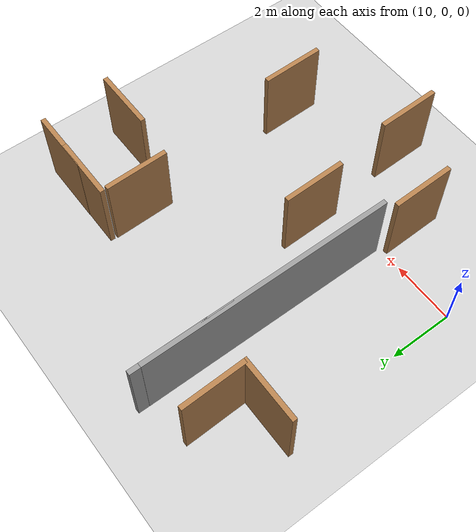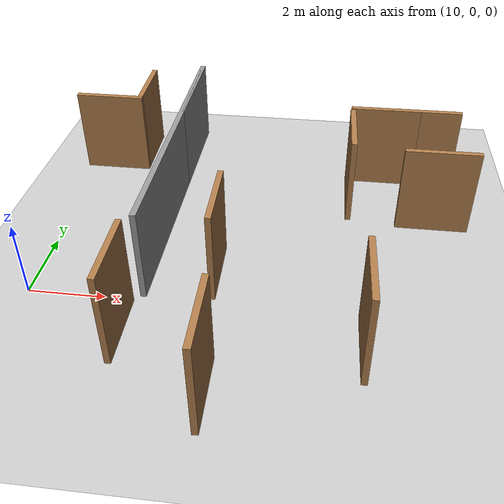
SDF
<sdf version="1.6">
 <world name="default">
  <model name="ground_plane">
   <static>1</static>
   <link name="link">
    <collision name="collision">
     <geometry><plane><normal>0 0 1</normal><size>100 100</size></plane></geometry>
     <surface><friction><ode><mu>100</mu><mu2>50</mu2></ode></friction></surface>
    </collision>
    <visual name="visual">
     <cast_shadows>0</cast_shadows>
     <geometry><plane><normal>0 0 1</normal><size>100 100</size></plane></geometry>
     <material>
      <script><uri>file://media/materials/scripts/gazebo.material</uri><name>Gazebo/Grey</name></script>
     </material>
    </visual>
   </link>
  </model>
  <model name="rbcp_final4">
   <link name="Wall_62">
    <pose>7.98874 7.81665 2.5 0 -0 1.5708</pose>
    <visual name="Wall_62_Visual">
     <pose>0 0 1.25 0 -0 0</pose>
     <geometry><box><size>8 0.15 2.5</size></box></geometry>
     <material>
      <script><uri>file://media/materials/scripts/gazebo.material</uri><name>Gazebo/Grey</name></script>
      <ambient>1 1 1 1</ambient>
      <diffuse>0.7 0.7 0.7 1</diffuse>
      <specular>0.01 0.01 0.01 1</specular>
      <emissive>0 0 0 1</emissive>
     </material>
    </visual>
    <collision name="Wall_62_Collision">
     <pose>0 0 1.25 0 -0 0</pose>
     <geometry><box><size>8 0.15 2.5</size></box></geometry>
     <surface>
      <friction>
       <ode><mu>1</mu><mu2>1</mu2><fdir1>0 0 0</fdir1><slip1>0</slip1><slip2>0</slip2></ode>
       <torsional>
        <coefficient>1</coefficient>
        <patch_radius>0</patch_radius>
        <surface_radius>0</surface_radius>
        <use_patch_radius>1</use_patch_radius>
        <ode><slip>0</slip></ode>
       </torsional>
      </friction>
      <bounce><restitution_coefficient>0</restitution_coefficient><threshold>1e+06</threshold></bounce>
      <contact>
       <collide_without_contact>0</collide_without_contact>
       <collide_without_contact_bitmask>1</collide_without_contact_bitmask>
       <collide_bitmask>1</collide_bitmask>
       <ode>
        <soft_cfm>0</soft_cfm>
        <soft_erp>0.2</soft_erp>
        <kp>1e+13</kp>
        <kd>1</kd>
        <max_vel>0.01</max_vel>
        <min_depth>0</min_depth>
       </ode>
       <bullet>
        <split_impulse>1</split_impulse>
        <split_impulse_penetration_threshold>-0.01</split_impulse_penetration_threshold>
        <soft_cfm>0</soft_cfm>
        <soft_erp>0.2</soft_erp>
        <kp>1e+13</kp>
        <kd>1</kd>
       </bullet>
      </contact>
     </surface>
    </collision>
   </link>
   <link name="Wall_63">
    <pose>7.9904 10.5318 2.5 0 0 -1.5708</pose>
    <visual name="Wall_63_Visual">
     <pose>0 0 1.25 0 -0 0</pose>
     <geometry><box><size>3.25 0.15 2.5</size></box></geometry>
     <material>
      <script><uri>file://media/materials/scripts/gazebo.material</uri><name>Gazebo/Grey</name></script>
      <ambient>1 1 1 1</ambient>
      <diffuse>0.7 0.7 0.7 1</diffuse>
      <specular>0.01 0.01 0.01 1</specular>
      <emissive>0 0 0 1</emissive>
     </material>
    </visual>
    <collision name="Wall_63_Collision">
     <pose>0 0 1.25 0 -0 0</pose>
     <geometry><box><size>3.25 0.15 2.5</size></box></geometry>
     <surface>
      <friction>
       <ode><mu>1</mu><mu2>1</mu2><fdir1>0 0 0</fdir1><slip1>0</slip1><slip2>0</slip2></ode>
       <torsional>
        <coefficient>1</coefficient>
        <patch_radius>0</patch_radius>
        <surface_radius>0</surface_radius>
        <use_patch_radius>1</use_patch_radius>
        <ode><slip>0</slip></ode>
       </torsional>
      </friction>
      <bounce><restitution_coefficient>0</restitution_coefficient><threshold>1e+06</threshold></bounce>
      <contact>
       <collide_without_contact>0</collide_without_contact>
       <collide_without_contact_bitmask>1</collide_without_contact_bitmask>
       <collide_bitmask>1</collide_bitmask>
       <ode>
        <soft_cfm>0</soft_cfm>
        <soft_erp>0.2</soft_erp>
        <kp>1e+13</kp>
        <kd>1</kd>
        <max_vel>0.01</max_vel>
        <min_depth>0</min_depth>
       </ode>
       <bullet>
        <split_impulse>1</split_impulse>
        <split_impulse_penetration_threshold>-0.01</split_impulse_penetration_threshold>
        <soft_cfm>0</soft_cfm>
        <soft_erp>0.2</soft_erp>
        <kp>1e+13</kp>
        <kd>1</kd>
       </bullet>
      </contact>
     </surface>
    </collision>
   </link>
   <static>1</static>
   <pose>4.93057 -3.68418 -2.5 0 -0 0</pose>
  </model>
  <model name="tr_maze_lay_1_clone_9_clone_11">
   <pose>12.6756 -1.03475 0 0 0 -1.549</pose>
   <link name="Wall_21">
    <collision name="Wall_21_Collision">
     <geometry><box><size>2 0.15 2.5</size></box></geometry>
     <pose>0 0 1.25 0 -0 0</pose>
    </collision>
    <visual name="Wall_21_Visual">
     <pose>0 0 1.25 0 -0 0</pose>
     <geometry><box><size>2 0.15 2.5</size></box></geometry>
     <material>
      <script><uri>file://media/materials/scripts/gazebo.material</uri><name>Gazebo/Wood</name></script>
      <ambient>1 1 1 1</ambient>
     </material>
    </visual>
    <pose>0 0 0 0 -0 3.14159</pose>
   </link>
   <static>1</static>
  </model>
  <model name="tr_maze_lay_1_clone_9_clone_12">
   <pose>18.3077 -0.952828 0 0 0 -1.549</pose>
   <link name="Wall_21">
    <collision name="Wall_21_Collision">
     <geometry><box><size>2 0.15 2.5</size></box></geometry>
     <pose>0 0 1.25 0 -0 0</pose>
    </collision>
    <visual name="Wall_21_Visual">
     <pose>0 0 1.25 0 -0 0</pose>
     <geometry><box><size>2 0.15 2.5</size></box></geometry>
     <material>
      <script><uri>file://media/materials/scripts/gazebo.material</uri><name>Gazebo/Wood</name></script>
      <ambient>1 1 1 1</ambient>
     </material>
    </visual>
    <pose>0 0 0 0 -0 3.14159</pose>
   </link>
   <static>1</static>
  </model>
  <model name="tr_maze_lay_1_clone_9_clone_13">
   <pose>14.9625 -2.58662 0 0 0 -1.549</pose>
   <link name="Wall_21">
    <collision name="Wall_21_Collision">
     <geometry><box><size>2 0.15 2.5</size></box></geometry>
     <pose>0 0 1.25 0 -0 0</pose>
    </collision>
    <visual name="Wall_21_Visual">
     <pose>0 0 1.25 0 -0 0</pose>
     <geometry><box><size>2 0.15 2.5</size></box></geometry>
     <material>
      <script><uri>file://media/materials/scripts/gazebo.material</uri><name>Gazebo/Wood</name></script>
      <ambient>1 1 1 1</ambient>
     </material>
    </visual>
    <pose>0 0 0 0 -0 3.14159</pose>
   </link>
   <static>1</static>
  </model>
  <model name="tr_maze_lay_1_clone_13">
   <pose>10.5413 5.98376 0 0 -0 0</pose>
   <link name="Wall_21">
    <collision name="Wall_21_Collision">
     <geometry><box><size>2 0.15 2.5</size></box></geometry>
     <pose>0 0 1.25 0 -0 0</pose>
    </collision>
    <visual name="Wall_21_Visual">
     <pose>0 0 1.25 0 -0 0</pose>
     <geometry><box><size>2 0.15 2.5</size></box></geometry>
     <material>
      <script><uri>file://media/materials/scripts/gazebo.material</uri><name>Gazebo/Wood</name></script>
      <ambient>1 1 1 1</ambient>
     </material>
    </visual>
    <pose>0 0 0 0 -0 3.14159</pose>
   </link>
   <static>1</static>
  </model>
  <model name="tr_maze_lay_1_clone_15">
   <pose>18.8175 6.07903 0 0 -0 0</pose>
   <link name="Wall_21">
    <collision name="Wall_21_Collision">
     <geometry><box><size>2 0.15 2.5</size></box></geometry>
     <pose>0 0 1.25 0 -0 0</pose>
    </collision>
    <visual name="Wall_21_Visual">
     <pose>0 0 1.25 0 -0 0</pose>
     <geometry><box><size>2 0.15 2.5</size></box></geometry>
     <material>
      <script><uri>file://media/materials/scripts/gazebo.material</uri><name>Gazebo/Wood</name></script>
      <ambient>1 1 1 1</ambient>
     </material>
    </visual>
    <pose>0 0 0 0 -0 3.14159</pose>
   </link>
   <static>1</static>
  </model>
  <model name="tr_maze_lay_1_clone_5_clone_8">
   <pose>17.8838 4.93581 0 0 0 -1.549</pose>
   <link name="Wall_21">
    <collision name="Wall_21_Collision">
     <geometry><box><size>2 0.15 2.5</size></box></geometry>
     <pose>0 0 1.25 0 -0 0</pose>
    </collision>
    <visual name="Wall_21_Visual">
     <pose>0 0 1.25 0 -0 0</pose>
     <geometry><box><size>2 0.15 2.5</size></box></geometry>
     <material>
      <script><uri>file://media/materials/scripts/gazebo.material</uri><name>Gazebo/Wood</name></script>
      <ambient>1 1 1 1</ambient>
     </material>
    </visual>
    <pose>0 0 0 0 -0 3.14159</pose>
   </link>
   <static>1</static>
  </model>
  <model name="tr_maze_lay_1_clone_5_clone_10">
   <pose>14.6066 1.23662 0 0 0 -1.549</pose>
   <link name="Wall_21">
    <collision name="Wall_21_Collision">
     <geometry><box><size>2 0.15 2.5</size></box></geometry>
     <pose>0 0 1.25 0 -0 0</pose>
    </collision>
    <visual name="Wall_21_Visual">
     <pose>0 0 1.25 0 -0 0</pose>
     <geometry><box><size>2 0.15 2.5</size></box></geometry>
     <material>
      <script><uri>file://media/materials/scripts/gazebo.material</uri><name>Gazebo/Wood</name></script>
      <ambient>1 1 1 1</ambient>
     </material>
    </visual>
    <pose>0 0 0 0 -0 3.14159</pose>
   </link>
   <static>1</static>
  </model>
  <model name="tr_maze_lay_1_clone_5_clone_11">
   <pose>11.4445 6.98606 0 0 0 -1.549</pose>
   <link name="Wall_21">
    <collision name="Wall_21_Collision">
     <geometry><box><size>2 0.15 2.5</size></box></geometry>
     <pose>0 0 1.25 0 -0 0</pose>
    </collision>
    <visual name="Wall_21_Visual">
     <pose>0 0 1.25 0 -0 0</pose>
     <geometry><box><size>2 0.15 2.5</size></box></geometry>
     <material>
      <script><uri>file://media/materials/scripts/gazebo.material</uri><name>Gazebo/Wood</name></script>
      <ambient>1 1 1 1</ambient>
     </material>
    </visual>
    <pose>0 0 0 0 -0 3.14159</pose>
   </link>
   <static>1</static>
  </model>
  <model name="tr_maze_lay_1_clone_15_clone">
   <pose>19.9812 6.08627 0 0 -0 0</pose>
   <link name="Wall_21">
    <collision name="Wall_21_Collision">
     <geometry><box><size>2 0.15 2.5</size></box></geometry>
     <pose>0 0 1.25 0 -0 0</pose>
    </collision>
    <visual name="Wall_21_Visual">
     <pose>0 0 1.25 0 -0 0</pose>
     <geometry><box><size>2 0.15 2.5</size></box></geometry>
     <material>
      <script><uri>file://media/materials/scripts/gazebo.material</uri><name>Gazebo/Wood</name></script>
      <ambient>1 1 1 1</ambient>
     </material>
    </visual>
    <pose>0 0 0 0 -0 3.14159</pose>
   </link>
   <static>1</static>
  </model>
  <model name="tr_maze_lay_1_clone_15_clone_1">
   <pose>20.2258 3.81289 0 0 -0 0</pose>
   <link name="Wall_21">
    <collision name="Wall_21_Collision">
     <geometry><box><size>2 0.15 2.5</size></box></geometry>
     <pose>0 0 1.25 0 -0 0</pose>
    </collision>
    <visual name="Wall_21_Visual">
     <pose>0 0 1.25 0 -0 0</pose>
     <geometry><box><size>2 0.15 2.5</size></box></geometry>
     <material>
      <script><uri>file://media/materials/scripts/gazebo.material</uri><name>Gazebo/Wood</name></script>
      <ambient>1 1 1 1</ambient>
     </material>
    </visual>
    <pose>0 0 0 0 -0 3.14159</pose>
   </link>
   <static>1</static>
  </model>
 </world>
</sdf>
